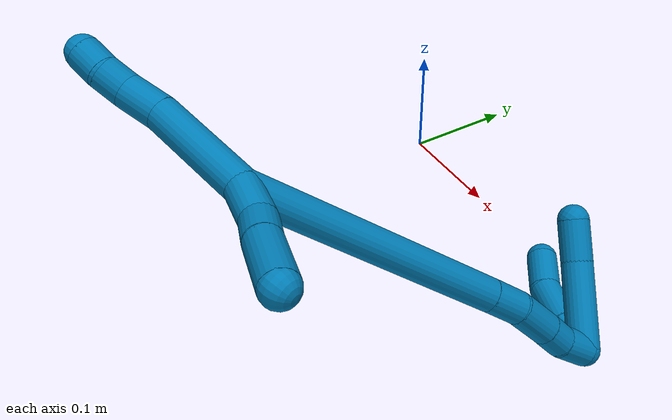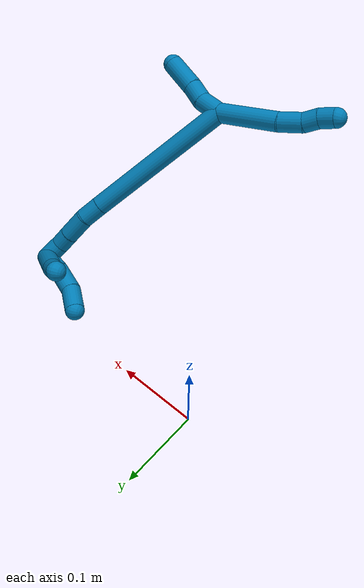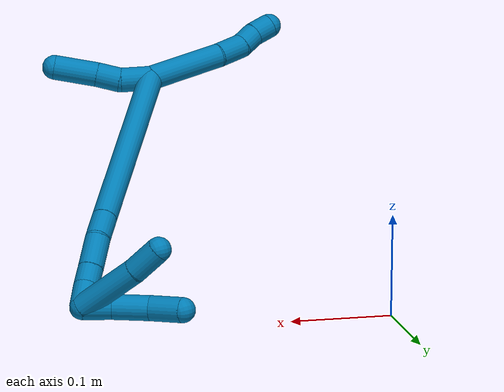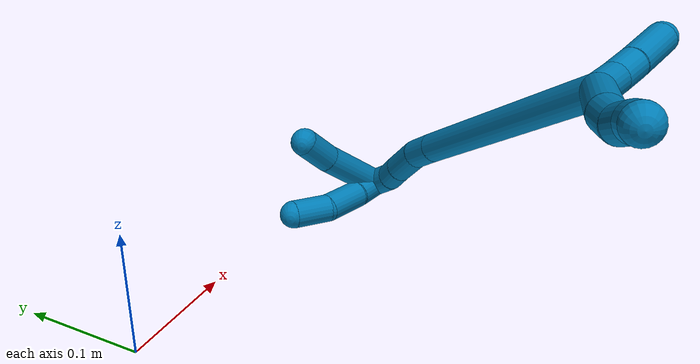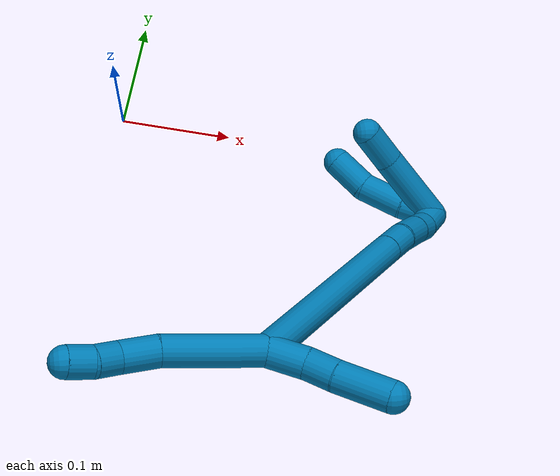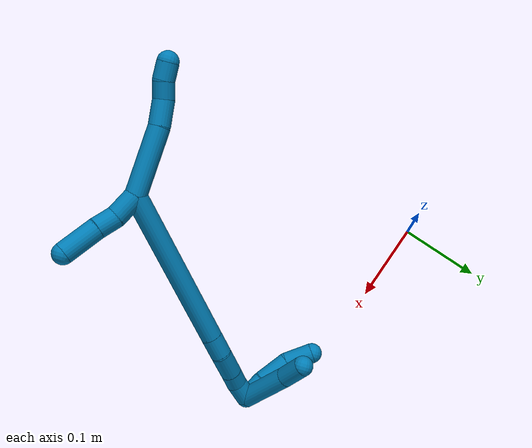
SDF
<sdf version="1.7">
 <world name="default">
  <model name="9">
   <static>0</static>
   <link name="9">
    <collision name="collision-cylinder-e_1_2_8">
     <pose>-0.004038 -0.001485 0.039366 0.037715 -0.102147 -0.001928</pose>
     <geometry><cylinder><radius>0.0125</radius><length>0.0792</length></cylinder></geometry>
     <surface>
      <friction><ode><mu>1.16</mu><mu2>1.16</mu2><slip1>0</slip1><slip2>0</slip2></ode></friction>
      <contact><ode><kp>1e+06</kp><kd>1</kd><max_vel>0</max_vel><min_depth>0.001</min_depth></ode></contact>
     </surface>
    </collision>
    <visual name="visual-cylinder-e_1_2_8">
     <pose>-0.004038 -0.001485 0.039366 0.037715 -0.102147 -0.001928</pose>
     <geometry><cylinder><radius>0.0125</radius><length>0.0792</length></cylinder></geometry>
     <material><ambient>0 0.490196 0.709804 1</ambient></material>
    </visual>
    <collision name="collision-cylinder-e_2_8_9">
     <pose>-0.009593 -0.000998 0.093685 -0.131199 -0.100207 0.006588</pose>
     <geometry><cylinder><radius>0.0125</radius><length>0.030318</length></cylinder></geometry>
     <surface>
      <friction><ode><mu>1.16</mu><mu2>1.16</mu2><slip1>0</slip1><slip2>0</slip2></ode></friction>
      <contact><ode><kp>1e+06</kp><kd>1</kd><max_vel>0</max_vel><min_depth>0.001</min_depth></ode></contact>
     </surface>
    </collision>
    <visual name="visual-cylinder-e_2_8_9">
     <pose>-0.009593 -0.000998 0.093685 -0.131199 -0.100207 0.006588</pose>
     <geometry><cylinder><radius>0.0125</radius><length>0.030318</length></cylinder></geometry>
     <material><ambient>0 0.490196 0.709804 1</ambient></material>
    </visual>
    <collision name="collision-cylinder-e_3_9_10">
     <pose>-0.014755 0.00348 0.117719 -0.269117 -0.369324 0.050563</pose>
     <geometry><cylinder><radius>0.0125</radius><length>0.020203</length></cylinder></geometry>
     <surface>
      <friction><ode><mu>1.16</mu><mu2>1.16</mu2><slip1>0</slip1><slip2>0</slip2></ode></friction>
      <contact><ode><kp>1e+06</kp><kd>1</kd><max_vel>0</max_vel><min_depth>0.001</min_depth></ode></contact>
     </surface>
    </collision>
    <visual name="visual-cylinder-e_3_9_10">
     <pose>-0.014755 0.00348 0.117719 -0.269117 -0.369324 0.050563</pose>
     <geometry><cylinder><radius>0.0125</radius><length>0.020203</length></cylinder></geometry>
     <material><ambient>0 0.490196 0.709804 1</ambient></material>
    </visual>
    <collision name="collision-cylinder-e_4_10_6">
     <pose>-0.020977 0.006289 0.136603 -0.031024 -0.2568 0.004006</pose>
     <geometry><cylinder><radius>0.0125</radius><length>0.020279</length></cylinder></geometry>
     <surface>
      <friction><ode><mu>1.16</mu><mu2>1.16</mu2><slip1>0</slip1><slip2>0</slip2></ode></friction>
      <contact><ode><kp>1e+06</kp><kd>1</kd><max_vel>0</max_vel><min_depth>0.001</min_depth></ode></contact>
     </surface>
    </collision>
    <visual name="visual-cylinder-e_4_10_6">
     <pose>-0.020977 0.006289 0.136603 -0.031024 -0.2568 0.004006</pose>
     <geometry><cylinder><radius>0.0125</radius><length>0.020279</length></cylinder></geometry>
     <material><ambient>0 0.490196 0.709804 1</ambient></material>
    </visual>
    <collision name="collision-cylinder-e_1_2_11">
     <pose>-0.000399 0.006584 -0.014126 -2.7054 -0.025615 0.11546</pose>
     <geometry><cylinder><radius>0.0125</radius><length>0.03118</length></cylinder></geometry>
     <surface>
      <friction><ode><mu>1.16</mu><mu2>1.16</mu2><slip1>0</slip1><slip2>0</slip2></ode></friction>
      <contact><ode><kp>1e+06</kp><kd>1</kd><max_vel>0</max_vel><min_depth>0.001</min_depth></ode></contact>
     </surface>
    </collision>
    <visual name="visual-cylinder-e_1_2_11">
     <pose>-0.000399 0.006584 -0.014126 -2.7054 -0.025615 0.11546</pose>
     <geometry><cylinder><radius>0.0125</radius><length>0.03118</length></cylinder></geometry>
     <material><ambient>0 0.490196 0.709804 1</ambient></material>
    </visual>
    <collision name="collision-cylinder-e_2_11_12">
     <pose>-0.004035 0.020469 -0.037587 -2.47792 -0.266618 0.742302</pose>
     <geometry><cylinder><radius>0.0125</radius><length>0.024571</length></cylinder></geometry>
     <surface>
      <friction><ode><mu>1.16</mu><mu2>1.16</mu2><slip1>0</slip1><slip2>0</slip2></ode></friction>
      <contact><ode><kp>1e+06</kp><kd>1</kd><max_vel>0</max_vel><min_depth>0.001</min_depth></ode></contact>
     </surface>
    </collision>
    <visual name="visual-cylinder-e_2_11_12">
     <pose>-0.004035 0.020469 -0.037587 -2.47792 -0.266618 0.742302</pose>
     <geometry><cylinder><radius>0.0125</radius><length>0.024571</length></cylinder></geometry>
     <material><ambient>0 0.490196 0.709804 1</ambient></material>
    </visual>
    <collision name="collision-cylinder-e_3_12_5">
     <pose>-0.012257 0.039519 -0.064995 -2.56514 -0.227245 0.734834</pose>
     <geometry><cylinder><radius>0.0125</radius><length>0.044249</length></cylinder></geometry>
     <surface>
      <friction><ode><mu>1.16</mu><mu2>1.16</mu2><slip1>0</slip1><slip2>0</slip2></ode></friction>
      <contact><ode><kp>1e+06</kp><kd>1</kd><max_vel>0</max_vel><min_depth>0.001</min_depth></ode></contact>
     </surface>
    </collision>
    <visual name="visual-cylinder-e_3_12_5">
     <pose>-0.012257 0.039519 -0.064995 -2.56514 -0.227245 0.734834</pose>
     <geometry><cylinder><radius>0.0125</radius><length>0.044249</length></cylinder></geometry>
     <material><ambient>0 0.490196 0.709804 1</ambient></material>
    </visual>
    <collision name="collision-cylinder-e_1_2_13">
     <pose>0.043386 -0.059904 -0.062931 2.38083 0.463128 1.06562</pose>
     <geometry><cylinder><radius>0.0125</radius><length>0.194228</length></cylinder></geometry>
     <surface>
      <friction><ode><mu>1.16</mu><mu2>1.16</mu2><slip1>0</slip1><slip2>0</slip2></ode></friction>
      <contact><ode><kp>1e+06</kp><kd>1</kd><max_vel>0</max_vel><min_depth>0.001</min_depth></ode></contact>
     </surface>
    </collision>
    <visual name="visual-cylinder-e_1_2_13">
     <pose>0.043386 -0.059904 -0.062931 2.38083 0.463128 1.06562</pose>
     <geometry><cylinder><radius>0.0125</radius><length>0.194228</length></cylinder></geometry>
     <material><ambient>0 0.490196 0.709804 1</ambient></material>
    </visual>
    <collision name="collision-cylinder-e_2_13_14">
     <pose>0.093001 -0.128029 -0.134496 2.38079 0.481544 1.10134</pose>
     <geometry><cylinder><radius>0.0125</radius><length>0.026903</length></cylinder></geometry>
     <surface>
      <friction><ode><mu>1.16</mu><mu2>1.16</mu2><slip1>0</slip1><slip2>0</slip2></ode></friction>
      <contact><ode><kp>1e+06</kp><kd>1</kd><max_vel>0</max_vel><min_depth>0.001</min_depth></ode></contact>
     </surface>
    </collision>
    <visual name="visual-cylinder-e_2_13_14">
     <pose>0.093001 -0.128029 -0.134496 2.38079 0.481544 1.10134</pose>
     <geometry><cylinder><radius>0.0125</radius><length>0.026903</length></cylinder></geometry>
     <material><ambient>0 0.490196 0.709804 1</ambient></material>
    </visual>
    <collision name="collision-cylinder-e_3_14_15">
     <pose>0.10969 -0.144974 -0.152578 2.39589 0.682789 1.47484</pose>
     <geometry><cylinder><radius>0.0125</radius><length>0.033152</length></cylinder></geometry>
     <surface>
      <friction><ode><mu>1.16</mu><mu2>1.16</mu2><slip1>0</slip1><slip2>0</slip2></ode></friction>
      <contact><ode><kp>1e+06</kp><kd>1</kd><max_vel>0</max_vel><min_depth>0.001</min_depth></ode></contact>
     </surface>
    </collision>
    <visual name="visual-cylinder-e_3_14_15">
     <pose>0.10969 -0.144974 -0.152578 2.39589 0.682789 1.47484</pose>
     <geometry><cylinder><radius>0.0125</radius><length>0.033152</length></cylinder></geometry>
     <material><ambient>0 0.490196 0.709804 1</ambient></material>
    </visual>
    <collision name="collision-cylinder-e_4_15_16">
     <pose>0.126729 -0.158739 -0.167846 2.42801 0.707148 1.56093</pose>
     <geometry><cylinder><radius>0.0125</radius><length>0.020257</length></cylinder></geometry>
     <surface>
      <friction><ode><mu>1.16</mu><mu2>1.16</mu2><slip1>0</slip1><slip2>0</slip2></ode></friction>
      <contact><ode><kp>1e+06</kp><kd>1</kd><max_vel>0</max_vel><min_depth>0.001</min_depth></ode></contact>
     </surface>
    </collision>
    <visual name="visual-cylinder-e_4_15_16">
     <pose>0.126729 -0.158739 -0.167846 2.42801 0.707148 1.56093</pose>
     <geometry><cylinder><radius>0.0125</radius><length>0.020257</length></cylinder></geometry>
     <material><ambient>0 0.490196 0.709804 1</ambient></material>
    </visual>
    <collision name="collision-cylinder-e_5_16_1">
     <pose>0.13941 -0.172319 -0.180872 2.27162 0.499814 1.00461</pose>
     <geometry><cylinder><radius>0.0125</radius><length>0.02546</length></cylinder></geometry>
     <surface>
      <friction><ode><mu>1.16</mu><mu2>1.16</mu2><slip1>0</slip1><slip2>0</slip2></ode></friction>
      <contact><ode><kp>1e+06</kp><kd>1</kd><max_vel>0</max_vel><min_depth>0.001</min_depth></ode></contact>
     </surface>
    </collision>
    <visual name="visual-cylinder-e_5_16_1">
     <pose>0.13941 -0.172319 -0.180872 2.27162 0.499814 1.00461</pose>
     <geometry><cylinder><radius>0.0125</radius><length>0.02546</length></cylinder></geometry>
     <material><ambient>0 0.490196 0.709804 1</ambient></material>
    </visual>
    <collision name="collision-cylinder-e_1_1_17">
     <pose>0.126257 -0.199401 -0.167835 0.741612 -0.611654 -0.244285</pose>
     <geometry><cylinder><radius>0.0125</radius><length>0.067061</length></cylinder></geometry>
     <surface>
      <friction><ode><mu>1.16</mu><mu2>1.16</mu2><slip1>0</slip1><slip2>0</slip2></ode></friction>
      <contact><ode><kp>1e+06</kp><kd>1</kd><max_vel>0</max_vel><min_depth>0.001</min_depth></ode></contact>
     </surface>
    </collision>
    <visual name="visual-cylinder-e_1_1_17">
     <pose>0.126257 -0.199401 -0.167835 0.741612 -0.611654 -0.244285</pose>
     <geometry><cylinder><radius>0.0125</radius><length>0.067061</length></cylinder></geometry>
     <material><ambient>0 0.490196 0.709804 1</ambient></material>
    </visual>
    <collision name="collision-cylinder-e_2_17_4">
     <pose>0.096215 -0.225662 -0.137832 0.669089 -0.714271 -0.257972</pose>
     <geometry><cylinder><radius>0.0125</radius><length>0.032939</length></cylinder></geometry>
     <surface>
      <friction><ode><mu>1.16</mu><mu2>1.16</mu2><slip1>0</slip1><slip2>0</slip2></ode></friction>
      <contact><ode><kp>1e+06</kp><kd>1</kd><max_vel>0</max_vel><min_depth>0.001</min_depth></ode></contact>
     </surface>
    </collision>
    <visual name="visual-cylinder-e_2_17_4">
     <pose>0.096215 -0.225662 -0.137832 0.669089 -0.714271 -0.257972</pose>
     <geometry><cylinder><radius>0.0125</radius><length>0.032939</length></cylinder></geometry>
     <material><ambient>0 0.490196 0.709804 1</ambient></material>
    </visual>
    <collision name="collision-cylinder-e_1_1_18">
     <pose>0.14655 -0.187615 -0.175441 0.491011 0.072344 0.018134</pose>
     <geometry><cylinder><radius>0.0125</radius><length>0.028733</length></cylinder></geometry>
     <surface>
      <friction><ode><mu>1.16</mu><mu2>1.16</mu2><slip1>0</slip1><slip2>0</slip2></ode></friction>
      <contact><ode><kp>1e+06</kp><kd>1</kd><max_vel>0</max_vel><min_depth>0.001</min_depth></ode></contact>
     </surface>
    </collision>
    <visual name="visual-cylinder-e_1_1_18">
     <pose>0.14655 -0.187615 -0.175441 0.491011 0.072344 0.018134</pose>
     <geometry><cylinder><radius>0.0125</radius><length>0.028733</length></cylinder></geometry>
     <material><ambient>0 0.490196 0.709804 1</ambient></material>
    </visual>
    <collision name="collision-cylinder-e_2_18_19">
     <pose>0.14868 -0.205411 -0.147706 0.631335 0.058295 0.019043</pose>
     <geometry><cylinder><radius>0.0125</radius><length>0.037475</length></cylinder></geometry>
     <surface>
      <friction><ode><mu>1.16</mu><mu2>1.16</mu2><slip1>0</slip1><slip2>0</slip2></ode></friction>
      <contact><ode><kp>1e+06</kp><kd>1</kd><max_vel>0</max_vel><min_depth>0.001</min_depth></ode></contact>
     </surface>
    </collision>
    <visual name="visual-cylinder-e_2_18_19">
     <pose>0.14868 -0.205411 -0.147706 0.631335 0.058295 0.019043</pose>
     <geometry><cylinder><radius>0.0125</radius><length>0.037475</length></cylinder></geometry>
     <material><ambient>0 0.490196 0.709804 1</ambient></material>
    </visual>
    <collision name="collision-cylinder-e_3_19_3">
     <pose>0.14913 -0.229937 -0.122446 0.925102 -0.037943 -0.018921</pose>
     <geometry><cylinder><radius>0.0125</radius><length>0.033793</length></cylinder></geometry>
     <surface>
      <friction><ode><mu>1.16</mu><mu2>1.16</mu2><slip1>0</slip1><slip2>0</slip2></ode></friction>
      <contact><ode><kp>1e+06</kp><kd>1</kd><max_vel>0</max_vel><min_depth>0.001</min_depth></ode></contact>
     </surface>
    </collision>
    <visual name="visual-cylinder-e_3_19_3">
     <pose>0.14913 -0.229937 -0.122446 0.925102 -0.037943 -0.018921</pose>
     <geometry><cylinder><radius>0.0125</radius><length>0.033793</length></cylinder></geometry>
     <material><ambient>0 0.490196 0.709804 1</ambient></material>
    </visual>
    <collision name="collision-sphere-3">
     <pose>0.148489 -0.243422 -0.112286 0 -0 0</pose>
     <geometry><sphere><radius>0.0125</radius></sphere></geometry>
     <surface>
      <friction><ode><mu>1.16</mu><mu2>1.16</mu2><slip1>0</slip1><slip2>0</slip2></ode></friction>
      <contact><ode><kp>1e+06</kp><kd>1</kd><max_vel>0</max_vel><min_depth>0.001</min_depth></ode></contact>
     </surface>
    </collision>
    <visual name="visual-sphere-3">
     <pose>0.148489 -0.243422 -0.112286 0 -0 0</pose>
     <geometry><sphere><radius>0.0125</radius></sphere></geometry>
     <material><ambient>0 0.490196 0.709804 1</ambient></material>
    </visual>
    <collision name="collision-sphere-19">
     <pose>0.149771 -0.216452 -0.132606 0 -0 0</pose>
     <geometry><sphere><radius>0.0125</radius></sphere></geometry>
     <surface>
      <friction><ode><mu>1.16</mu><mu2>1.16</mu2><slip1>0</slip1><slip2>0</slip2></ode></friction>
      <contact><ode><kp>1e+06</kp><kd>1</kd><max_vel>0</max_vel><min_depth>0.001</min_depth></ode></contact>
     </surface>
    </collision>
    <visual name="visual-sphere-19">
     <pose>0.149771 -0.216452 -0.132606 0 -0 0</pose>
     <geometry><sphere><radius>0.0125</radius></sphere></geometry>
     <material><ambient>0 0.490196 0.709804 1</ambient></material>
    </visual>
    <collision name="collision-sphere-11">
     <pose>-0.000799 0.013169 -0.028251 0 -0 0</pose>
     <geometry><sphere><radius>0.0125</radius></sphere></geometry>
     <surface>
      <friction><ode><mu>1.16</mu><mu2>1.16</mu2><slip1>0</slip1><slip2>0</slip2></ode></friction>
      <contact><ode><kp>1e+06</kp><kd>1</kd><max_vel>0</max_vel><min_depth>0.001</min_depth></ode></contact>
     </surface>
    </collision>
    <visual name="visual-sphere-11">
     <pose>-0.000799 0.013169 -0.028251 0 -0 0</pose>
     <geometry><sphere><radius>0.0125</radius></sphere></geometry>
     <material><ambient>0 0.490196 0.709804 1</ambient></material>
    </visual>
    <collision name="collision-sphere-6">
     <pose>-0.023553 0.006593 0.146405 0 -0 0</pose>
     <geometry><sphere><radius>0.0125</radius></sphere></geometry>
     <surface>
      <friction><ode><mu>1.16</mu><mu2>1.16</mu2><slip1>0</slip1><slip2>0</slip2></ode></friction>
      <contact><ode><kp>1e+06</kp><kd>1</kd><max_vel>0</max_vel><min_depth>0.001</min_depth></ode></contact>
     </surface>
    </collision>
    <visual name="visual-sphere-6">
     <pose>-0.023553 0.006593 0.146405 0 -0 0</pose>
     <geometry><sphere><radius>0.0125</radius></sphere></geometry>
     <material><ambient>0 0.490196 0.709804 1</ambient></material>
    </visual>
    <collision name="collision-sphere-10">
     <pose>-0.018402 0.005985 0.1268 0 -0 0</pose>
     <geometry><sphere><radius>0.0125</radius></sphere></geometry>
     <surface>
      <friction><ode><mu>1.16</mu><mu2>1.16</mu2><slip1>0</slip1><slip2>0</slip2></ode></friction>
      <contact><ode><kp>1e+06</kp><kd>1</kd><max_vel>0</max_vel><min_depth>0.001</min_depth></ode></contact>
     </surface>
    </collision>
    <visual name="visual-sphere-10">
     <pose>-0.018402 0.005985 0.1268 0 -0 0</pose>
     <geometry><sphere><radius>0.0125</radius></sphere></geometry>
     <material><ambient>0 0.490196 0.709804 1</ambient></material>
    </visual>
    <collision name="collision-sphere-9">
     <pose>-0.011109 0.000976 0.108638 0 -0 0</pose>
     <geometry><sphere><radius>0.0125</radius></sphere></geometry>
     <surface>
      <friction><ode><mu>1.16</mu><mu2>1.16</mu2><slip1>0</slip1><slip2>0</slip2></ode></friction>
      <contact><ode><kp>1e+06</kp><kd>1</kd><max_vel>0</max_vel><min_depth>0.001</min_depth></ode></contact>
     </surface>
    </collision>
    <visual name="visual-sphere-9">
     <pose>-0.011109 0.000976 0.108638 0 -0 0</pose>
     <geometry><sphere><radius>0.0125</radius></sphere></geometry>
     <material><ambient>0 0.490196 0.709804 1</ambient></material>
    </visual>
    <collision name="collision-sphere-2">
     <geometry><sphere><radius>0.0125</radius></sphere></geometry>
     <surface>
      <friction><ode><mu>1.16</mu><mu2>1.16</mu2><slip1>0</slip1><slip2>0</slip2></ode></friction>
      <contact><ode><kp>1e+06</kp><kd>1</kd><max_vel>0</max_vel><min_depth>0.001</min_depth></ode></contact>
     </surface>
    </collision>
    <visual name="visual-sphere-2">
     <geometry><sphere><radius>0.0125</radius></sphere></geometry>
     <material><ambient>0 0.490196 0.709804 1</ambient></material>
    </visual>
    <collision name="collision-sphere-8">
     <pose>-0.008076 -0.002971 0.078732 0 -0 0</pose>
     <geometry><sphere><radius>0.0125</radius></sphere></geometry>
     <surface>
      <friction><ode><mu>1.16</mu><mu2>1.16</mu2><slip1>0</slip1><slip2>0</slip2></ode></friction>
      <contact><ode><kp>1e+06</kp><kd>1</kd><max_vel>0</max_vel><min_depth>0.001</min_depth></ode></contact>
     </surface>
    </collision>
    <visual name="visual-sphere-8">
     <pose>-0.008076 -0.002971 0.078732 0 -0 0</pose>
     <geometry><sphere><radius>0.0125</radius></sphere></geometry>
     <material><ambient>0 0.490196 0.709804 1</ambient></material>
    </visual>
    <collision name="collision-sphere-12">
     <pose>-0.007272 0.02777 -0.046923 0 -0 0</pose>
     <geometry><sphere><radius>0.0125</radius></sphere></geometry>
     <surface>
      <friction><ode><mu>1.16</mu><mu2>1.16</mu2><slip1>0</slip1><slip2>0</slip2></ode></friction>
      <contact><ode><kp>1e+06</kp><kd>1</kd><max_vel>0</max_vel><min_depth>0.001</min_depth></ode></contact>
     </surface>
    </collision>
    <visual name="visual-sphere-12">
     <pose>-0.007272 0.02777 -0.046923 0 -0 0</pose>
     <geometry><sphere><radius>0.0125</radius></sphere></geometry>
     <material><ambient>0 0.490196 0.709804 1</ambient></material>
    </visual>
    <collision name="collision-sphere-5">
     <pose>-0.017241 0.051268 -0.083068 0 -0 0</pose>
     <geometry><sphere><radius>0.0125</radius></sphere></geometry>
     <surface>
      <friction><ode><mu>1.16</mu><mu2>1.16</mu2><slip1>0</slip1><slip2>0</slip2></ode></friction>
      <contact><ode><kp>1e+06</kp><kd>1</kd><max_vel>0</max_vel><min_depth>0.001</min_depth></ode></contact>
     </surface>
    </collision>
    <visual name="visual-sphere-5">
     <pose>-0.017241 0.051268 -0.083068 0 -0 0</pose>
     <geometry><sphere><radius>0.0125</radius></sphere></geometry>
     <material><ambient>0 0.490196 0.709804 1</ambient></material>
    </visual>
    <collision name="collision-sphere-13">
     <pose>0.086771 -0.119809 -0.125862 0 -0 0</pose>
     <geometry><sphere><radius>0.0125</radius></sphere></geometry>
     <surface>
      <friction><ode><mu>1.16</mu><mu2>1.16</mu2><slip1>0</slip1><slip2>0</slip2></ode></friction>
      <contact><ode><kp>1e+06</kp><kd>1</kd><max_vel>0</max_vel><min_depth>0.001</min_depth></ode></contact>
     </surface>
    </collision>
    <visual name="visual-sphere-13">
     <pose>0.086771 -0.119809 -0.125862 0 -0 0</pose>
     <geometry><sphere><radius>0.0125</radius></sphere></geometry>
     <material><ambient>0 0.490196 0.709804 1</ambient></material>
    </visual>
    <collision name="collision-sphere-14">
     <pose>0.099231 -0.136249 -0.143131 0 -0 0</pose>
     <geometry><sphere><radius>0.0125</radius></sphere></geometry>
     <surface>
      <friction><ode><mu>1.16</mu><mu2>1.16</mu2><slip1>0</slip1><slip2>0</slip2></ode></friction>
      <contact><ode><kp>1e+06</kp><kd>1</kd><max_vel>0</max_vel><min_depth>0.001</min_depth></ode></contact>
     </surface>
    </collision>
    <visual name="visual-sphere-14">
     <pose>0.099231 -0.136249 -0.143131 0 -0 0</pose>
     <geometry><sphere><radius>0.0125</radius></sphere></geometry>
     <material><ambient>0 0.490196 0.709804 1</ambient></material>
    </visual>
    <collision name="collision-sphere-15">
     <pose>0.120148 -0.153699 -0.162025 0 -0 0</pose>
     <geometry><sphere><radius>0.0125</radius></sphere></geometry>
     <surface>
      <friction><ode><mu>1.16</mu><mu2>1.16</mu2><slip1>0</slip1><slip2>0</slip2></ode></friction>
      <contact><ode><kp>1e+06</kp><kd>1</kd><max_vel>0</max_vel><min_depth>0.001</min_depth></ode></contact>
     </surface>
    </collision>
    <visual name="visual-sphere-15">
     <pose>0.120148 -0.153699 -0.162025 0 -0 0</pose>
     <geometry><sphere><radius>0.0125</radius></sphere></geometry>
     <material><ambient>0 0.490196 0.709804 1</ambient></material>
    </visual>
    <collision name="collision-sphere-16">
     <pose>0.133309 -0.163779 -0.173668 0 -0 0</pose>
     <geometry><sphere><radius>0.0125</radius></sphere></geometry>
     <surface>
      <friction><ode><mu>1.16</mu><mu2>1.16</mu2><slip1>0</slip1><slip2>0</slip2></ode></friction>
      <contact><ode><kp>1e+06</kp><kd>1</kd><max_vel>0</max_vel><min_depth>0.001</min_depth></ode></contact>
     </surface>
    </collision>
    <visual name="visual-sphere-16">
     <pose>0.133309 -0.163779 -0.173668 0 -0 0</pose>
     <geometry><sphere><radius>0.0125</radius></sphere></geometry>
     <material><ambient>0 0.490196 0.709804 1</ambient></material>
    </visual>
    <collision name="collision-sphere-1">
     <pose>0.145511 -0.180858 -0.188077 0 -0 0</pose>
     <geometry><sphere><radius>0.0125</radius></sphere></geometry>
     <surface>
      <friction><ode><mu>1.16</mu><mu2>1.16</mu2><slip1>0</slip1><slip2>0</slip2></ode></friction>
      <contact><ode><kp>1e+06</kp><kd>1</kd><max_vel>0</max_vel><min_depth>0.001</min_depth></ode></contact>
     </surface>
    </collision>
    <visual name="visual-sphere-1">
     <pose>0.145511 -0.180858 -0.188077 0 -0 0</pose>
     <geometry><sphere><radius>0.0125</radius></sphere></geometry>
     <material><ambient>0 0.490196 0.709804 1</ambient></material>
    </visual>
    <collision name="collision-sphere-18">
     <pose>0.147588 -0.194371 -0.162806 0 -0 0</pose>
     <geometry><sphere><radius>0.0125</radius></sphere></geometry>
     <surface>
      <friction><ode><mu>1.16</mu><mu2>1.16</mu2><slip1>0</slip1><slip2>0</slip2></ode></friction>
      <contact><ode><kp>1e+06</kp><kd>1</kd><max_vel>0</max_vel><min_depth>0.001</min_depth></ode></contact>
     </surface>
    </collision>
    <visual name="visual-sphere-18">
     <pose>0.147588 -0.194371 -0.162806 0 -0 0</pose>
     <geometry><sphere><radius>0.0125</radius></sphere></geometry>
     <material><ambient>0 0.490196 0.709804 1</ambient></material>
    </visual>
    <collision name="collision-sphere-17">
     <pose>0.107003 -0.217944 -0.147593 0 -0 0</pose>
     <geometry><sphere><radius>0.0125</radius></sphere></geometry>
     <surface>
      <friction><ode><mu>1.16</mu><mu2>1.16</mu2><slip1>0</slip1><slip2>0</slip2></ode></friction>
      <contact><ode><kp>1e+06</kp><kd>1</kd><max_vel>0</max_vel><min_depth>0.001</min_depth></ode></contact>
     </surface>
    </collision>
    <visual name="visual-sphere-17">
     <pose>0.107003 -0.217944 -0.147593 0 -0 0</pose>
     <geometry><sphere><radius>0.0125</radius></sphere></geometry>
     <material><ambient>0 0.490196 0.709804 1</ambient></material>
    </visual>
    <collision name="collision-sphere-4">
     <pose>0.085426 -0.233381 -0.128071 0 -0 0</pose>
     <geometry><sphere><radius>0.0125</radius></sphere></geometry>
     <surface>
      <friction><ode><mu>1.16</mu><mu2>1.16</mu2><slip1>0</slip1><slip2>0</slip2></ode></friction>
      <contact><ode><kp>1e+06</kp><kd>1</kd><max_vel>0</max_vel><min_depth>0.001</min_depth></ode></contact>
     </surface>
    </collision>
    <visual name="visual-sphere-4">
     <pose>0.085426 -0.233381 -0.128071 0 -0 0</pose>
     <geometry><sphere><radius>0.0125</radius></sphere></geometry>
     <material><ambient>0 0.490196 0.709804 1</ambient></material>
    </visual>
    <inertial>
     <pose>0.060202 -0.08886 -0.070063 0 -0 0</pose>
     <mass>0.75</mass>
     <inertia>
      <ixx>0.000869</ixx>
      <ixy>0</ixy>
      <ixz>0</ixz>
      <iyy>0.000505</iyy>
      <iyz>0</iyz>
      <izz>0.000152</izz>
     </inertia>
    </inertial>
   </link>
   <pose>0.183565 -0.265415 0.188757 0.50249 1.4444 -2.3333</pose>
  </model>
 </world>
</sdf>
